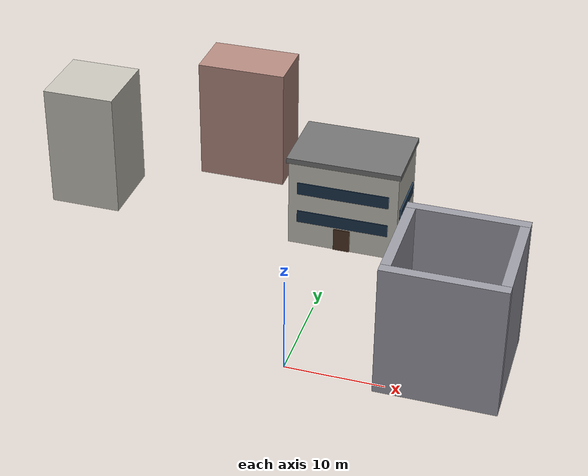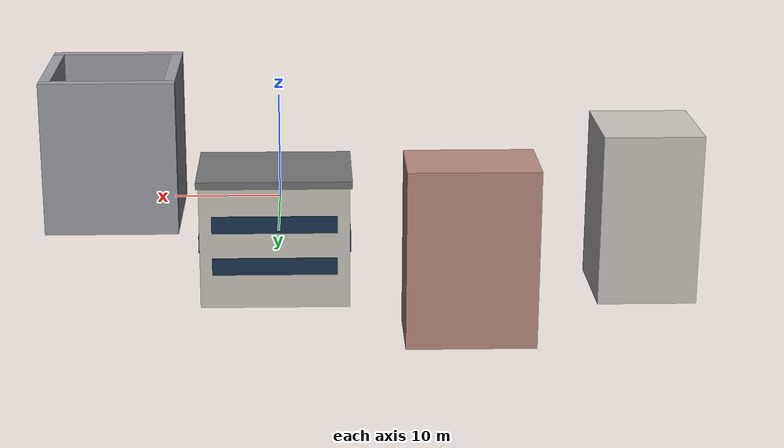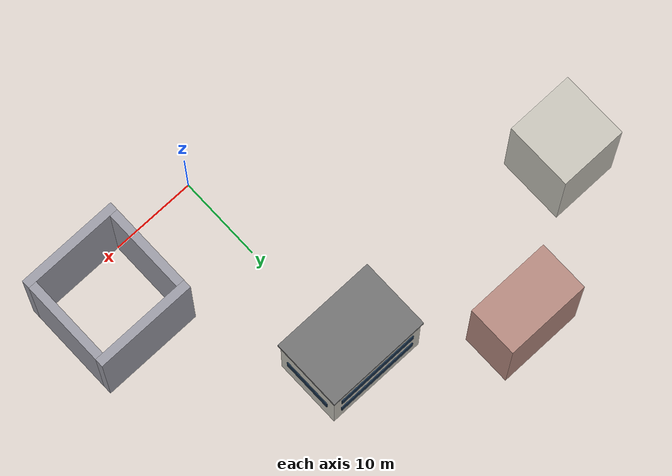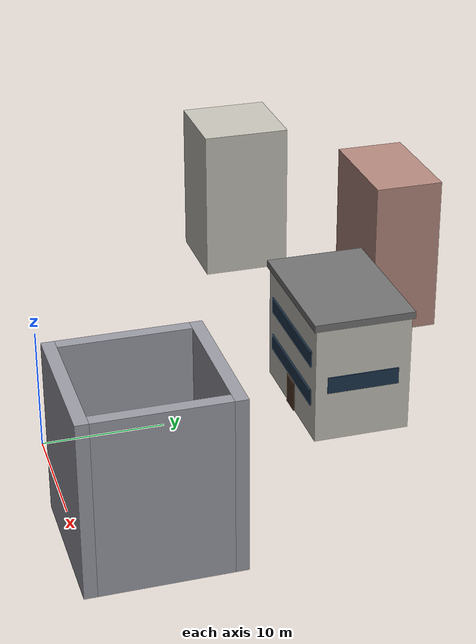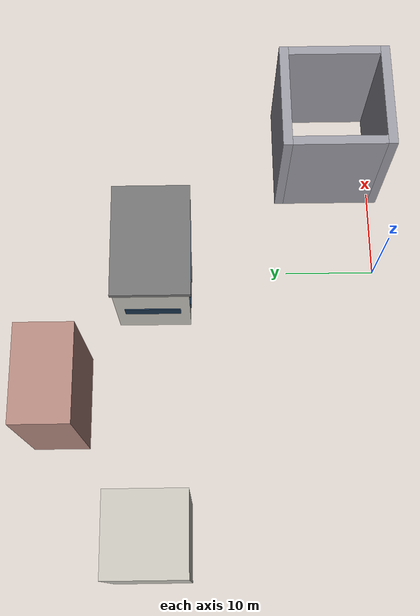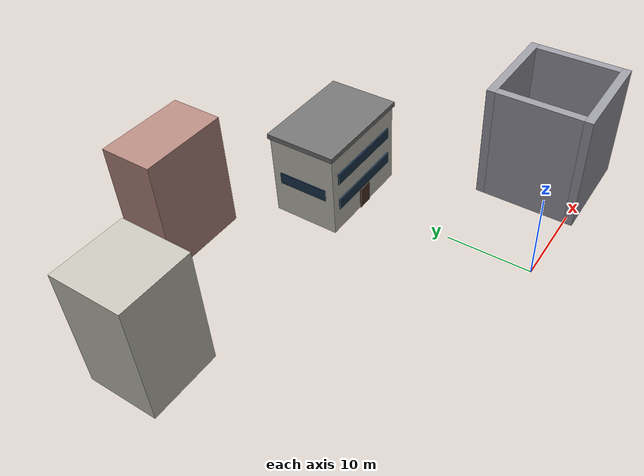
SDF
<sdf version="1.9">
 <world name="iris_runway">
  <physics name="1ms" type="ignore">
   <max_step_size>0.001</max_step_size>
   <real_time_factor>1.0</real_time_factor>
  </physics>
  <plugin filename="gz-sim-physics-system" name="gz::sim::systems::Physics"/>
  <plugin filename="gz-sim-sensors-system" name="gz::sim::systems::Sensors">
   <render_engine>ogre2</render_engine>
  </plugin>
  <plugin filename="gz-sim-user-commands-system" name="gz::sim::systems::UserCommands"/>
  <plugin filename="gz-sim-scene-broadcaster-system" name="gz::sim::systems::SceneBroadcaster"/>
  <plugin filename="gz-sim-imu-system" name="gz::sim::systems::Imu"/>
  <plugin filename="gz-sim-navsat-system" name="gz::sim::systems::NavSat"/>
  <scene><ambient>1.0 1.0 1.0</ambient><background>0.8 0.8 0.8</background></scene>
  <spherical_coordinates>
   <latitude_deg>-35.363262</latitude_deg>
   <longitude_deg>149.165237</longitude_deg>
   <elevation>584</elevation>
   <heading_deg>0</heading_deg>
   <surface_model>EARTH_WGS84</surface_model>
  </spherical_coordinates>
  <light type="directional" name="sun">
   <pose>0 0 10 0 0 0</pose>
   <diffuse>0.8 0.8 0.8 1</diffuse>
   <specular>0.8 0.8 0.8 1</specular>
   <attenuation>
    <range>1000</range>
    <constant>0.9</constant>
    <linear>0.01</linear>
    <quadratic>0.001</quadratic>
   </attenuation>
   <direction>-0.5 0.1 -0.9</direction>
  </light>
  <model name="axes">
   <static>1</static>
   <link name="link">
    <visual name="r">
     <cast_shadows>0</cast_shadows>
     <pose>5 0 0.1 0 0 0</pose>
     <geometry><box><size>10 0.01 0.01</size></box></geometry>
     <material>
      <ambient>1 0 0 0.8</ambient>
      <diffuse>1 0 0 0.8</diffuse>
      <emissive>1 0 0 0.8</emissive>
      <specular>0.5 0.5 0.5 0.8</specular>
     </material>
    </visual>
    <visual name="g">
     <cast_shadows>0</cast_shadows>
     <pose>0 5 0.1 0 0 0</pose>
     <geometry><box><size>0.01 10 0.01</size></box></geometry>
     <material>
      <ambient>0 1 0 0.8</ambient>
      <diffuse>0 1 0 0.8</diffuse>
      <emissive>0 1 0 0.8</emissive>
      <specular>0.5 0.5 0.5 0.8</specular>
     </material>
    </visual>
    <visual name="b">
     <cast_shadows>0</cast_shadows>
     <pose>0 0 5.1 0 0 0</pose>
     <geometry><box><size>0.01 0.01 10</size></box></geometry>
     <material>
      <ambient>0 0 1 0.8</ambient>
      <diffuse>0 0 1 0.8</diffuse>
      <emissive>0 0 1 0.8</emissive>
      <specular>0.5 0.5 0.5 0.8</specular>
     </material>
    </visual>
    <sensor name="navsat_sensor" type="navsat"><always_on>1</always_on><update_rate>1</update_rate></sensor>
   </link>
  </model>
  <model name="building">
   <static>true</static>
   <pose degrees="true">0 25 0 0 0 0</pose>
   <link name="link">
    <collision name="walls_collision">
     <pose>0 0 5 0 0 0</pose>
     <geometry><box><size>12 8 10</size></box></geometry>
    </collision>
    <collision name="parapet_collision">
     <pose>0 0 10.3 0 0 0</pose>
     <geometry><box><size>12.4 8.4 0.6</size></box></geometry>
    </collision>
    <visual name="walls_visual">
     <pose>0 0 5 0 0 0</pose>
     <geometry><box><size>12 8 10</size></box></geometry>
     <material>
      <ambient>0.62 0.61 0.58 1</ambient>
      <diffuse>0.78 0.77 0.73 1</diffuse>
      <specular>0.1 0.1 0.1 1</specular>
     </material>
    </visual>
    <visual name="parapet_visual">
     <pose>0 0 10.3 0 0 0</pose>
     <geometry><box><size>12.4 8.4 0.6</size></box></geometry>
     <material>
      <ambient>0.35 0.35 0.35 1</ambient>
      <diffuse>0.45 0.45 0.45 1</diffuse>
      <specular>0.1 0.1 0.1 1</specular>
     </material>
    </visual>
    <visual name="window_south_lower">
     <pose>0 -4.06 3.5 0 0 0</pose>
     <geometry><box><size>10 0.12 1.4</size></box></geometry>
     <material>
      <ambient>0.05 0.09 0.13 1</ambient>
      <diffuse>0.10 0.20 0.30 1</diffuse>
      <specular>0.8 0.8 0.9 1</specular>
     </material>
    </visual>
    <visual name="window_south_upper">
     <pose>0 -4.06 7.0 0 0 0</pose>
     <geometry><box><size>10 0.12 1.4</size></box></geometry>
     <material>
      <ambient>0.05 0.09 0.13 1</ambient>
      <diffuse>0.10 0.20 0.30 1</diffuse>
      <specular>0.8 0.8 0.9 1</specular>
     </material>
    </visual>
    <visual name="window_north_lower">
     <pose>0 4.06 3.5 0 0 0</pose>
     <geometry><box><size>10 0.12 1.4</size></box></geometry>
     <material>
      <ambient>0.05 0.09 0.13 1</ambient>
      <diffuse>0.10 0.20 0.30 1</diffuse>
      <specular>0.8 0.8 0.9 1</specular>
     </material>
    </visual>
    <visual name="window_north_upper">
     <pose>0 4.06 7.0 0 0 0</pose>
     <geometry><box><size>10 0.12 1.4</size></box></geometry>
     <material>
      <ambient>0.05 0.09 0.13 1</ambient>
      <diffuse>0.10 0.20 0.30 1</diffuse>
      <specular>0.8 0.8 0.9 1</specular>
     </material>
    </visual>
    <visual name="window_east">
     <pose>6.06 0 5.0 0 0 0</pose>
     <geometry><box><size>0.12 6 1.4</size></box></geometry>
     <material>
      <ambient>0.05 0.09 0.13 1</ambient>
      <diffuse>0.10 0.20 0.30 1</diffuse>
      <specular>0.8 0.8 0.9 1</specular>
     </material>
    </visual>
    <visual name="window_west">
     <pose>-6.06 0 5.0 0 0 0</pose>
     <geometry><box><size>0.12 6 1.4</size></box></geometry>
     <material>
      <ambient>0.05 0.09 0.13 1</ambient>
      <diffuse>0.10 0.20 0.30 1</diffuse>
      <specular>0.8 0.8 0.9 1</specular>
     </material>
    </visual>
    <visual name="door">
     <pose>0 -4.06 1.3 0 0 0</pose>
     <geometry><box><size>1.8 0.12 2.6</size></box></geometry>
     <material>
      <ambient>0.20 0.14 0.10 1</ambient>
      <diffuse>0.30 0.20 0.14 1</diffuse>
      <specular>0.2 0.2 0.2 1</specular>
     </material>
    </visual>
   </link>
  </model>
  <model name="block_west">
   <static>true</static>
   <pose degrees="true">-30 25 0 0 0 0</pose>
   <link name="link">
    <collision name="collision">
     <pose>0 0 7.0 0 0 0</pose>
     <geometry><box><size>8 8 14.0</size></box></geometry>
    </collision>
    <visual name="visual">
     <pose>0 0 7.0 0 0 0</pose>
     <geometry><box><size>8 8 14.0</size></box></geometry>
     <material>
      <ambient>0.62 0.61 0.58 1</ambient>
      <diffuse>0.78 0.77 0.73 1</diffuse>
      <specular>0.1 0.1 0.1 1</specular>
     </material>
    </visual>
   </link>
  </model>
  <model name="corner_nw">
   <static>true</static>
   <pose degrees="true">-15 35 0 0 0 0</pose>
   <link name="link">
    <collision name="collision">
     <pose>0 0 7.0 0 0 0</pose>
     <geometry><box><size>10 6 14.0</size></box></geometry>
    </collision>
    <visual name="visual">
     <pose>0 0 7.0 0 0 0</pose>
     <geometry><box><size>10 6 14.0</size></box></geometry>
     <material>
      <ambient>0.55 0.38 0.35 1</ambient>
      <diffuse>0.71 0.54 0.50 1</diffuse>
      <specular>0.1 0.1 0.1 1</specular>
     </material>
    </visual>
   </link>
  </model>
  <model name="courtyard_se_s">
   <static>true</static>
   <pose degrees="true">15 -0.5 0 0 0 0</pose>
   <link name="link">
    <collision name="collision">
     <pose>0 0 7.0 0 0 0</pose>
     <geometry><box><size>12 1 14.0</size></box></geometry>
    </collision>
    <visual name="visual">
     <pose>0 0 7.0 0 0 0</pose>
     <geometry><box><size>12 1 14.0</size></box></geometry>
     <material>
      <ambient>0.45 0.45 0.5 1</ambient>
      <diffuse>0.61 0.61 0.65 1</diffuse>
      <specular>0.1 0.1 0.1 1</specular>
     </material>
    </visual>
   </link>
  </model>
  <model name="courtyard_se_n">
   <static>true</static>
   <pose degrees="true">15 10.5 0 0 0 0</pose>
   <link name="link">
    <collision name="collision">
     <pose>0 0 7.0 0 0 0</pose>
     <geometry><box><size>12 1 14.0</size></box></geometry>
    </collision>
    <visual name="visual">
     <pose>0 0 7.0 0 0 0</pose>
     <geometry><box><size>12 1 14.0</size></box></geometry>
     <material>
      <ambient>0.45 0.45 0.5 1</ambient>
      <diffuse>0.61 0.61 0.65 1</diffuse>
      <specular>0.1 0.1 0.1 1</specular>
     </material>
    </visual>
   </link>
  </model>
  <model name="courtyard_se_w">
   <static>true</static>
   <pose degrees="true">9.5 5 0 0 0 0</pose>
   <link name="link">
    <collision name="collision">
     <pose>0 0 7.0 0 0 0</pose>
     <geometry><box><size>1 10 14.0</size></box></geometry>
    </collision>
    <visual name="visual">
     <pose>0 0 7.0 0 0 0</pose>
     <geometry><box><size>1 10 14.0</size></box></geometry>
     <material>
      <ambient>0.45 0.45 0.5 1</ambient>
      <diffuse>0.61 0.61 0.65 1</diffuse>
      <specular>0.1 0.1 0.1 1</specular>
     </material>
    </visual>
   </link>
  </model>
  <model name="courtyard_se_e">
   <static>true</static>
   <pose degrees="true">20.5 5 0 0 0 0</pose>
   <link name="link">
    <collision name="collision">
     <pose>0 0 7.0 0 0 0</pose>
     <geometry><box><size>1 10 14.0</size></box></geometry>
    </collision>
    <visual name="visual">
     <pose>0 0 7.0 0 0 0</pose>
     <geometry><box><size>1 10 14.0</size></box></geometry>
     <material>
      <ambient>0.45 0.45 0.5 1</ambient>
      <diffuse>0.61 0.61 0.65 1</diffuse>
      <specular>0.1 0.1 0.1 1</specular>
     </material>
    </visual>
   </link>
  </model>
 </world>
</sdf>
